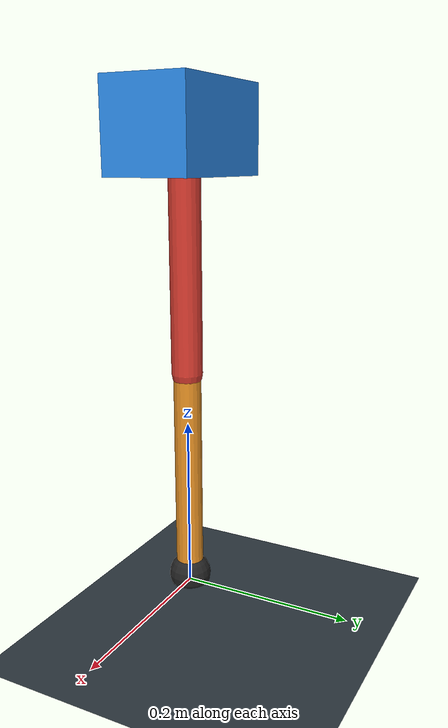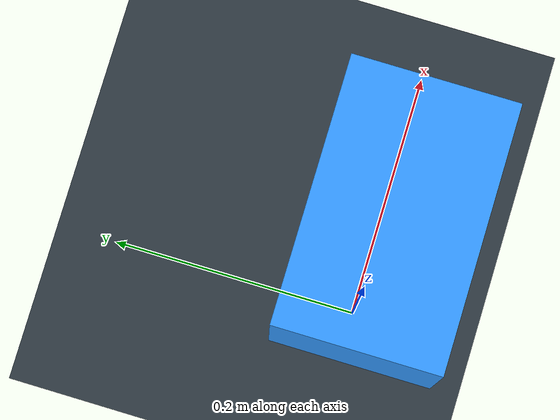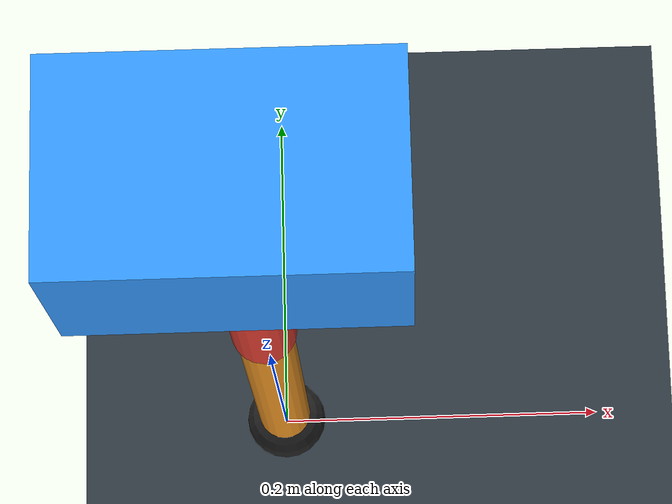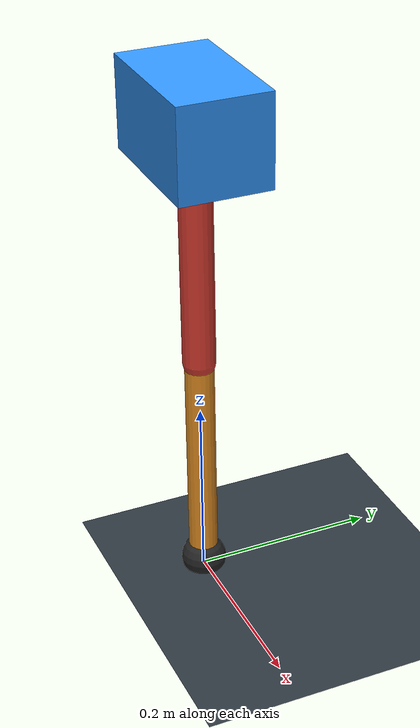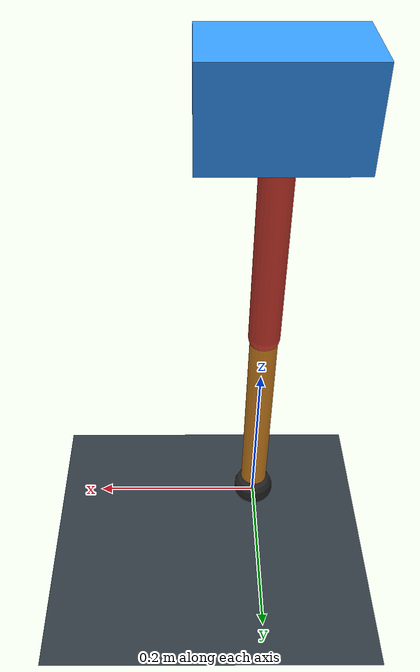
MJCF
<mujoco model="single_axis_two_bar">
  <compiler angle="radian" inertiafromgeom="true"/>
  <option timestep="0.001" integrator="implicitfast" gravity="0 0 -9.81"/>
  <default>
    <joint damping="0.08"/>
    <geom friction="1.2 0.01 0.0001" condim="3"/>
  </default>
  <worldbody>
    <geom name="floor" type="plane" size="5 5 0.1" rgba="0.18 0.22 0.25 1"/>
    <body name="carriage" pos="0 0 0.5309692917718204">
      <joint name="pole_slide" type="slide" axis="0 0 1"/>
      <geom name="payload" type="box" size="0.08 0.05 0.05" mass="3.351272533727216" rgba="0.2 0.6 1 1"/>
      <body name="thigh" pos="0 0 0">
        <joint name="hip" type="hinge" axis="0 1 0"/>
        <geom name="thigh_link" type="capsule" fromto="0 0 0 0 0 -0.2699867197263964" size="0.018" mass="0.19236910536479865" rgba="0.9 0.25 0.2 1"/>
        <body name="shank" pos="0 0 -0.2699867197263964">
          <joint name="knee" type="hinge" axis="0 1 0"/>
          <geom name="shank_link" type="capsule" fromto="0 0 0 0 0 -0.2516311068424906" size="0.016" mass="0.17929048863699115" rgba="0.95 0.6 0.15 1"/>
          <geom name="foot" type="sphere" pos="0 0 -0.2516311068424906" size="0.025" mass="0.03" rgba="0.15 0.15 0.15 1"/>
          <site name="toe" pos="0 0 -0.2516311068424906" size="0.008"/>
        </body>
      </body>
    </body>
  </worldbody>
  <actuator>
    <motor name="hip_motor" joint="hip" ctrlrange="-10.386090421815922 10.386090421815922"/>
    <motor name="knee_motor" joint="knee" ctrlrange="-110.48889241137273 110.48889241137273"/>
  </actuator>
</mujoco>
